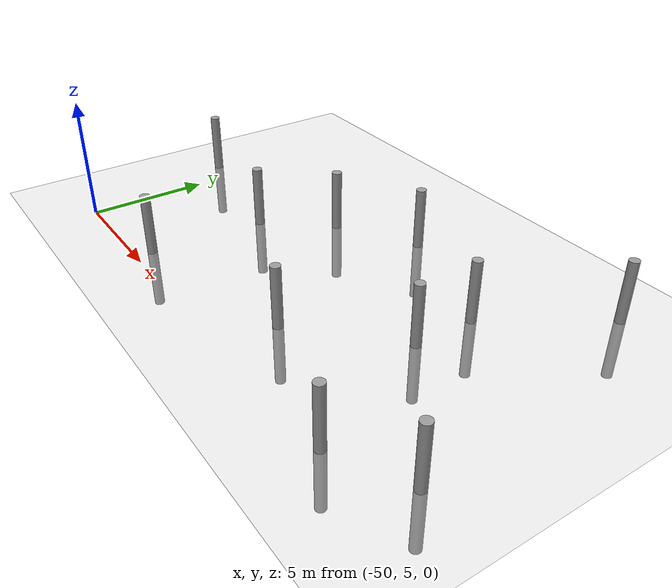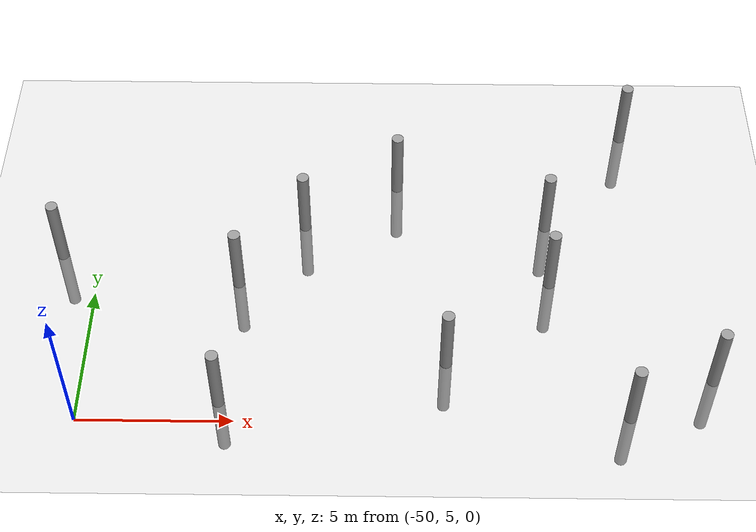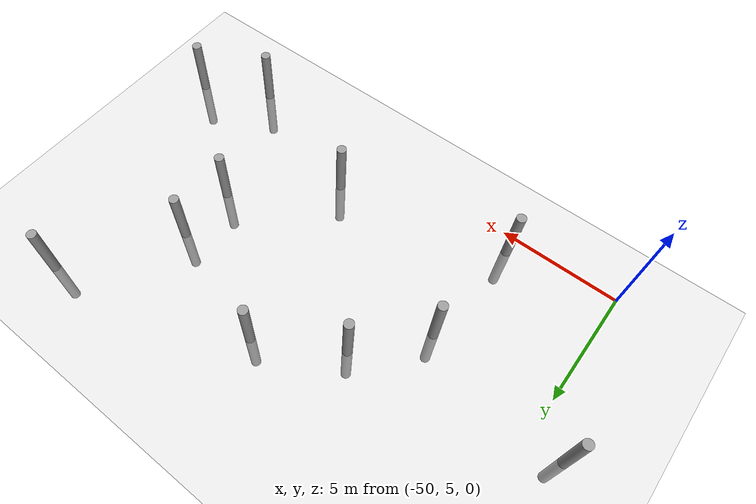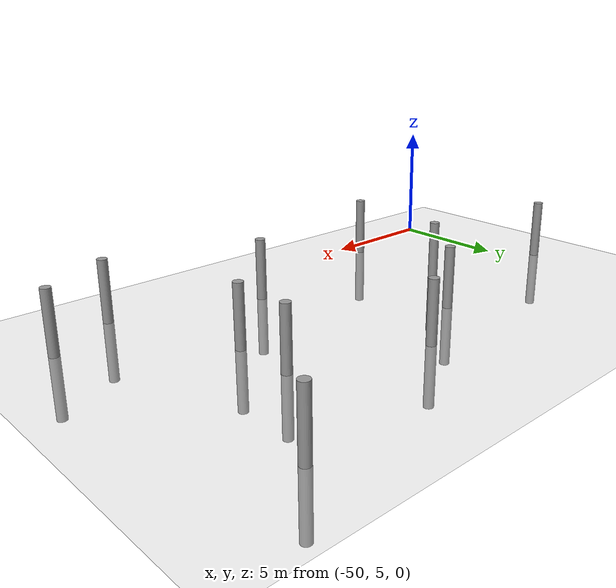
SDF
<sdf version="1.6">
 <world name="default">
  <model name="ground_plane">
   <static>1</static>
   <link name="link">
    <collision name="collision">
     <geometry><plane><normal>0 0 1</normal><size>100 100</size></plane></geometry>
     <surface><friction><ode><mu>100</mu><mu2>50</mu2></ode></friction></surface>
    </collision>
    <visual name="visual">
     <cast_shadows>0</cast_shadows>
     <geometry><plane><normal>0 0 1</normal><size>100 100</size></plane></geometry>
     <material>
      <script><uri>file://media/materials/scripts/gazebo.material</uri><name>Gazebo/Grey</name></script>
     </material>
    </visual>
   </link>
  </model>
  <model name="empty_pillars_5">
   <model name="empty_pillar_clone_12">
    <link name="link">
     <inertial>
      <mass>1</mass>
      <inertia><ixx>0.145833</ixx><ixy>0</ixy><ixz>0</ixz><iyy>0.145833</iyy><iyz>0</iyz><izz>0.125</izz></inertia>
     </inertial>
     <visual name="visual">
      <geometry><cylinder><radius>0.2</radius><length>5</length></cylinder></geometry>
      <material>
       <script><name>Gazebo/Grey</name><uri>file://media/materials/scripts/gazebo.material</uri></script>
       <shader type="vertex"><normal_map>__default__</normal_map></shader>
       <ambient>0.3 0.3 0.3 1</ambient>
       <diffuse>0.7 0.7 0.7 1</diffuse>
       <specular>0.01 0.01 0.01 1</specular>
       <emissive>0 0 0 1</emissive>
      </material>
     </visual>
     <collision name="collision">
      <geometry><cylinder><radius>0.05</radius><length>5</length></cylinder></geometry>
      <surface>
       <friction>
        <ode><mu>1</mu><mu2>1</mu2><fdir1>0 0 0</fdir1><slip1>0</slip1><slip2>0</slip2></ode>
        <torsional>
         <coefficient>1</coefficient>
         <patch_radius>0</patch_radius>
         <surface_radius>0</surface_radius>
         <use_patch_radius>1</use_patch_radius>
         <ode><slip>0</slip></ode>
        </torsional>
       </friction>
       <bounce><restitution_coefficient>0</restitution_coefficient><threshold>1e+06</threshold></bounce>
       <contact>
        <collide_without_contact>0</collide_without_contact>
        <collide_without_contact_bitmask>1</collide_without_contact_bitmask>
        <collide_bitmask>1</collide_bitmask>
        <ode>
         <soft_cfm>0</soft_cfm>
         <soft_erp>0.2</soft_erp>
         <kp>1e+13</kp>
         <kd>1</kd>
         <max_vel>0.01</max_vel>
         <min_depth>0</min_depth>
        </ode>
        <bullet>
         <split_impulse>1</split_impulse>
         <split_impulse_penetration_threshold>-0.01</split_impulse_penetration_threshold>
         <soft_cfm>0</soft_cfm>
         <soft_erp>0.2</soft_erp>
         <kp>1e+13</kp>
         <kd>1</kd>
        </bullet>
       </contact>
      </surface>
     </collision>
    </link>
    <static>0</static>
    <pose>-4.01464 -20.8403 0 0 -0 0</pose>
   </model>
   <model name="empty_pillar_clone_13">
    <link name="link">
     <inertial>
      <mass>1</mass>
      <inertia><ixx>0.145833</ixx><ixy>0</ixy><ixz>0</ixz><iyy>0.145833</iyy><iyz>0</iyz><izz>0.125</izz></inertia>
     </inertial>
     <visual name="visual">
      <geometry><cylinder><radius>0.2</radius><length>5</length></cylinder></geometry>
      <material>
       <script><name>Gazebo/Grey</name><uri>file://media/materials/scripts/gazebo.material</uri></script>
       <shader type="vertex"><normal_map>__default__</normal_map></shader>
       <ambient>0.3 0.3 0.3 1</ambient>
       <diffuse>0.7 0.7 0.7 1</diffuse>
       <specular>0.01 0.01 0.01 1</specular>
       <emissive>0 0 0 1</emissive>
      </material>
     </visual>
     <collision name="collision">
      <geometry><cylinder><radius>0.05</radius><length>5</length></cylinder></geometry>
      <surface>
       <friction>
        <ode><mu>1</mu><mu2>1</mu2><fdir1>0 0 0</fdir1><slip1>0</slip1><slip2>0</slip2></ode>
        <torsional>
         <coefficient>1</coefficient>
         <patch_radius>0</patch_radius>
         <surface_radius>0</surface_radius>
         <use_patch_radius>1</use_patch_radius>
         <ode><slip>0</slip></ode>
        </torsional>
       </friction>
       <bounce><restitution_coefficient>0</restitution_coefficient><threshold>1e+06</threshold></bounce>
       <contact>
        <collide_without_contact>0</collide_without_contact>
        <collide_without_contact_bitmask>1</collide_without_contact_bitmask>
        <collide_bitmask>1</collide_bitmask>
        <ode>
         <soft_cfm>0</soft_cfm>
         <soft_erp>0.2</soft_erp>
         <kp>1e+13</kp>
         <kd>1</kd>
         <max_vel>0.01</max_vel>
         <min_depth>0</min_depth>
        </ode>
        <bullet>
         <split_impulse>1</split_impulse>
         <split_impulse_penetration_threshold>-0.01</split_impulse_penetration_threshold>
         <soft_cfm>0</soft_cfm>
         <soft_erp>0.2</soft_erp>
         <kp>1e+13</kp>
         <kd>1</kd>
        </bullet>
       </contact>
      </surface>
     </collision>
    </link>
    <static>0</static>
    <pose>-9.01464 -14.4259 0 0 -0 0</pose>
   </model>
   <model name="empty_pillar_clone_35">
    <link name="link">
     <inertial>
      <mass>1</mass>
      <inertia><ixx>0.145833</ixx><ixy>0</ixy><ixz>0</ixz><iyy>0.145833</iyy><iyz>0</iyz><izz>0.125</izz></inertia>
     </inertial>
     <visual name="visual">
      <geometry><cylinder><radius>0.2</radius><length>5</length></cylinder></geometry>
      <material>
       <script><name>Gazebo/Grey</name><uri>file://media/materials/scripts/gazebo.material</uri></script>
       <shader type="vertex"><normal_map>__default__</normal_map></shader>
       <ambient>0.3 0.3 0.3 1</ambient>
       <diffuse>0.7 0.7 0.7 1</diffuse>
       <specular>0.01 0.01 0.01 1</specular>
       <emissive>0 0 0 1</emissive>
      </material>
     </visual>
     <collision name="collision">
      <geometry><cylinder><radius>0.05</radius><length>5</length></cylinder></geometry>
      <surface>
       <friction>
        <ode><mu>1</mu><mu2>1</mu2><fdir1>0 0 0</fdir1><slip1>0</slip1><slip2>0</slip2></ode>
        <torsional>
         <coefficient>1</coefficient>
         <patch_radius>0</patch_radius>
         <surface_radius>0</surface_radius>
         <use_patch_radius>1</use_patch_radius>
         <ode><slip>0</slip></ode>
        </torsional>
       </friction>
       <bounce><restitution_coefficient>0</restitution_coefficient><threshold>1e+06</threshold></bounce>
       <contact>
        <collide_without_contact>0</collide_without_contact>
        <collide_without_contact_bitmask>1</collide_without_contact_bitmask>
        <collide_bitmask>1</collide_bitmask>
        <ode>
         <soft_cfm>0</soft_cfm>
         <soft_erp>0.2</soft_erp>
         <kp>1e+13</kp>
         <kd>1</kd>
         <max_vel>0.01</max_vel>
         <min_depth>0</min_depth>
        </ode>
        <bullet>
         <split_impulse>1</split_impulse>
         <split_impulse_penetration_threshold>-0.01</split_impulse_penetration_threshold>
         <soft_cfm>0</soft_cfm>
         <soft_erp>0.2</soft_erp>
         <kp>1e+13</kp>
         <kd>1</kd>
        </bullet>
       </contact>
      </surface>
     </collision>
    </link>
    <static>0</static>
    <pose>-19.4431 -17.0281 0 0 -0 0</pose>
   </model>
   <model name="empty_pillar_clone_40">
    <link name="link">
     <inertial>
      <mass>1</mass>
      <inertia><ixx>0.145833</ixx><ixy>0</ixy><ixz>0</ixz><iyy>0.145833</iyy><iyz>0</iyz><izz>0.125</izz></inertia>
     </inertial>
     <visual name="visual">
      <geometry><cylinder><radius>0.2</radius><length>5</length></cylinder></geometry>
      <material>
       <script><name>Gazebo/Grey</name><uri>file://media/materials/scripts/gazebo.material</uri></script>
       <shader type="vertex"><normal_map>__default__</normal_map></shader>
       <ambient>0.3 0.3 0.3 1</ambient>
       <diffuse>0.7 0.7 0.7 1</diffuse>
       <specular>0.01 0.01 0.01 1</specular>
       <emissive>0 0 0 1</emissive>
      </material>
     </visual>
     <collision name="collision">
      <geometry><cylinder><radius>0.05</radius><length>5</length></cylinder></geometry>
      <surface>
       <friction>
        <ode><mu>1</mu><mu2>1</mu2><fdir1>0 0 0</fdir1><slip1>0</slip1><slip2>0</slip2></ode>
        <torsional>
         <coefficient>1</coefficient>
         <patch_radius>0</patch_radius>
         <surface_radius>0</surface_radius>
         <use_patch_radius>1</use_patch_radius>
         <ode><slip>0</slip></ode>
        </torsional>
       </friction>
       <bounce><restitution_coefficient>0</restitution_coefficient><threshold>1e+06</threshold></bounce>
       <contact>
        <collide_without_contact>0</collide_without_contact>
        <collide_without_contact_bitmask>1</collide_without_contact_bitmask>
        <collide_bitmask>1</collide_bitmask>
        <ode>
         <soft_cfm>0</soft_cfm>
         <soft_erp>0.2</soft_erp>
         <kp>1e+13</kp>
         <kd>1</kd>
         <max_vel>0.01</max_vel>
         <min_depth>0</min_depth>
        </ode>
        <bullet>
         <split_impulse>1</split_impulse>
         <split_impulse_penetration_threshold>-0.01</split_impulse_penetration_threshold>
         <soft_cfm>0</soft_cfm>
         <soft_erp>0.2</soft_erp>
         <kp>1e+13</kp>
         <kd>1</kd>
        </bullet>
       </contact>
      </surface>
     </collision>
    </link>
    <static>0</static>
    <pose>-17.318 -14.4851 0 0 -0 0</pose>
   </model>
   <model name="empty_pillar_clone_41">
    <link name="link">
     <inertial>
      <mass>1</mass>
      <inertia><ixx>0.145833</ixx><ixy>0</ixy><ixz>0</ixz><iyy>0.145833</iyy><iyz>0</iyz><izz>0.125</izz></inertia>
     </inertial>
     <visual name="visual">
      <geometry><cylinder><radius>0.2</radius><length>5</length></cylinder></geometry>
      <material>
       <script><name>Gazebo/Grey</name><uri>file://media/materials/scripts/gazebo.material</uri></script>
       <shader type="vertex"><normal_map>__default__</normal_map></shader>
       <ambient>0.3 0.3 0.3 1</ambient>
       <diffuse>0.7 0.7 0.7 1</diffuse>
       <specular>0.01 0.01 0.01 1</specular>
       <emissive>0 0 0 1</emissive>
      </material>
     </visual>
     <collision name="collision">
      <geometry><cylinder><radius>0.05</radius><length>5</length></cylinder></geometry>
      <surface>
       <friction>
        <ode><mu>1</mu><mu2>1</mu2><fdir1>0 0 0</fdir1><slip1>0</slip1><slip2>0</slip2></ode>
        <torsional>
         <coefficient>1</coefficient>
         <patch_radius>0</patch_radius>
         <surface_radius>0</surface_radius>
         <use_patch_radius>1</use_patch_radius>
         <ode><slip>0</slip></ode>
        </torsional>
       </friction>
       <bounce><restitution_coefficient>0</restitution_coefficient><threshold>1e+06</threshold></bounce>
       <contact>
        <collide_without_contact>0</collide_without_contact>
        <collide_without_contact_bitmask>1</collide_without_contact_bitmask>
        <collide_bitmask>1</collide_bitmask>
        <ode>
         <soft_cfm>0</soft_cfm>
         <soft_erp>0.2</soft_erp>
         <kp>1e+13</kp>
         <kd>1</kd>
         <max_vel>0.01</max_vel>
         <min_depth>0</min_depth>
        </ode>
        <bullet>
         <split_impulse>1</split_impulse>
         <split_impulse_penetration_threshold>-0.01</split_impulse_penetration_threshold>
         <soft_cfm>0</soft_cfm>
         <soft_erp>0.2</soft_erp>
         <kp>1e+13</kp>
         <kd>1</kd>
        </bullet>
       </contact>
      </surface>
     </collision>
    </link>
    <static>0</static>
    <pose>-14.1448 -12.6326 0 0 -0 0</pose>
   </model>
   <model name="empty_pillar_clone_42">
    <link name="link">
     <inertial>
      <mass>1</mass>
      <inertia><ixx>0.145833</ixx><ixy>0</ixy><ixz>0</ixz><iyy>0.145833</iyy><iyz>0</iyz><izz>0.125</izz></inertia>
     </inertial>
     <visual name="visual">
      <geometry><cylinder><radius>0.2</radius><length>5</length></cylinder></geometry>
      <material>
       <script><name>Gazebo/Grey</name><uri>file://media/materials/scripts/gazebo.material</uri></script>
       <shader type="vertex"><normal_map>__default__</normal_map></shader>
       <ambient>0.3 0.3 0.3 1</ambient>
       <diffuse>0.7 0.7 0.7 1</diffuse>
       <specular>0.01 0.01 0.01 1</specular>
       <emissive>0 0 0 1</emissive>
      </material>
     </visual>
     <collision name="collision">
      <geometry><cylinder><radius>0.05</radius><length>5</length></cylinder></geometry>
      <surface>
       <friction>
        <ode><mu>1</mu><mu2>1</mu2><fdir1>0 0 0</fdir1><slip1>0</slip1><slip2>0</slip2></ode>
        <torsional>
         <coefficient>1</coefficient>
         <patch_radius>0</patch_radius>
         <surface_radius>0</surface_radius>
         <use_patch_radius>1</use_patch_radius>
         <ode><slip>0</slip></ode>
        </torsional>
       </friction>
       <bounce><restitution_coefficient>0</restitution_coefficient><threshold>1e+06</threshold></bounce>
       <contact>
        <collide_without_contact>0</collide_without_contact>
        <collide_without_contact_bitmask>1</collide_without_contact_bitmask>
        <collide_bitmask>1</collide_bitmask>
        <ode>
         <soft_cfm>0</soft_cfm>
         <soft_erp>0.2</soft_erp>
         <kp>1e+13</kp>
         <kd>1</kd>
         <max_vel>0.01</max_vel>
         <min_depth>0</min_depth>
        </ode>
        <bullet>
         <split_impulse>1</split_impulse>
         <split_impulse_penetration_threshold>-0.01</split_impulse_penetration_threshold>
         <soft_cfm>0</soft_cfm>
         <soft_erp>0.2</soft_erp>
         <kp>1e+13</kp>
         <kd>1</kd>
        </bullet>
       </contact>
      </surface>
     </collision>
    </link>
    <static>0</static>
    <pose>-12.5409 -20.2416 0 0 -0 0</pose>
   </model>
   <model name="empty_pillar_clone_43">
    <link name="link">
     <inertial>
      <mass>1</mass>
      <inertia><ixx>0.145833</ixx><ixy>0</ixy><ixz>0</ixz><iyy>0.145833</iyy><iyz>0</iyz><izz>0.125</izz></inertia>
     </inertial>
     <visual name="visual">
      <geometry><cylinder><radius>0.2</radius><length>5</length></cylinder></geometry>
      <material>
       <script><name>Gazebo/Grey</name><uri>file://media/materials/scripts/gazebo.material</uri></script>
       <shader type="vertex"><normal_map>__default__</normal_map></shader>
       <ambient>0.3 0.3 0.3 1</ambient>
       <diffuse>0.7 0.7 0.7 1</diffuse>
       <specular>0.01 0.01 0.01 1</specular>
       <emissive>0 0 0 1</emissive>
      </material>
     </visual>
     <collision name="collision">
      <geometry><cylinder><radius>0.05</radius><length>5</length></cylinder></geometry>
      <surface>
       <friction>
        <ode><mu>1</mu><mu2>1</mu2><fdir1>0 0 0</fdir1><slip1>0</slip1><slip2>0</slip2></ode>
        <torsional>
         <coefficient>1</coefficient>
         <patch_radius>0</patch_radius>
         <surface_radius>0</surface_radius>
         <use_patch_radius>1</use_patch_radius>
         <ode><slip>0</slip></ode>
        </torsional>
       </friction>
       <bounce><restitution_coefficient>0</restitution_coefficient><threshold>1e+06</threshold></bounce>
       <contact>
        <collide_without_contact>0</collide_without_contact>
        <collide_without_contact_bitmask>1</collide_without_contact_bitmask>
        <collide_bitmask>1</collide_bitmask>
        <ode>
         <soft_cfm>0</soft_cfm>
         <soft_erp>0.2</soft_erp>
         <kp>1e+13</kp>
         <kd>1</kd>
         <max_vel>0.01</max_vel>
         <min_depth>0</min_depth>
        </ode>
        <bullet>
         <split_impulse>1</split_impulse>
         <split_impulse_penetration_threshold>-0.01</split_impulse_penetration_threshold>
         <soft_cfm>0</soft_cfm>
         <soft_erp>0.2</soft_erp>
         <kp>1e+13</kp>
         <kd>1</kd>
        </bullet>
       </contact>
      </surface>
     </collision>
    </link>
    <static>0</static>
    <pose>-19.7613 -21.8307 0 0 -0 0</pose>
   </model>
   <model name="empty_pillar_clone_44">
    <link name="link">
     <inertial>
      <mass>1</mass>
      <inertia><ixx>0.145833</ixx><ixy>0</ixy><ixz>0</ixz><iyy>0.145833</iyy><iyz>0</iyz><izz>0.125</izz></inertia>
     </inertial>
     <visual name="visual">
      <geometry><cylinder><radius>0.2</radius><length>5</length></cylinder></geometry>
      <material>
       <script><name>Gazebo/Grey</name><uri>file://media/materials/scripts/gazebo.material</uri></script>
       <shader type="vertex"><normal_map>__default__</normal_map></shader>
       <ambient>0.3 0.3 0.3 1</ambient>
       <diffuse>0.7 0.7 0.7 1</diffuse>
       <specular>0.01 0.01 0.01 1</specular>
       <emissive>0 0 0 1</emissive>
      </material>
     </visual>
     <collision name="collision">
      <geometry><cylinder><radius>0.05</radius><length>5</length></cylinder></geometry>
      <surface>
       <friction>
        <ode><mu>1</mu><mu2>1</mu2><fdir1>0 0 0</fdir1><slip1>0</slip1><slip2>0</slip2></ode>
        <torsional>
         <coefficient>1</coefficient>
         <patch_radius>0</patch_radius>
         <surface_radius>0</surface_radius>
         <use_patch_radius>1</use_patch_radius>
         <ode><slip>0</slip></ode>
        </torsional>
       </friction>
       <bounce><restitution_coefficient>0</restitution_coefficient><threshold>1e+06</threshold></bounce>
       <contact>
        <collide_without_contact>0</collide_without_contact>
        <collide_without_contact_bitmask>1</collide_without_contact_bitmask>
        <collide_bitmask>1</collide_bitmask>
        <ode>
         <soft_cfm>0</soft_cfm>
         <soft_erp>0.2</soft_erp>
         <kp>1e+13</kp>
         <kd>1</kd>
         <max_vel>0.01</max_vel>
         <min_depth>0</min_depth>
        </ode>
        <bullet>
         <split_impulse>1</split_impulse>
         <split_impulse_penetration_threshold>-0.01</split_impulse_penetration_threshold>
         <soft_cfm>0</soft_cfm>
         <soft_erp>0.2</soft_erp>
         <kp>1e+13</kp>
         <kd>1</kd>
        </bullet>
       </contact>
      </surface>
     </collision>
    </link>
    <static>0</static>
    <pose>-6.78285 -22.2729 0 0 -0 0</pose>
   </model>
   <model name="empty_pillar_clone_45">
    <link name="link">
     <inertial>
      <mass>1</mass>
      <inertia><ixx>0.145833</ixx><ixy>0</ixy><ixz>0</ixz><iyy>0.145833</iyy><iyz>0</iyz><izz>0.125</izz></inertia>
     </inertial>
     <visual name="visual">
      <geometry><cylinder><radius>0.2</radius><length>5</length></cylinder></geometry>
      <material>
       <script><name>Gazebo/Grey</name><uri>file://media/materials/scripts/gazebo.material</uri></script>
       <shader type="vertex"><normal_map>__default__</normal_map></shader>
       <ambient>0.3 0.3 0.3 1</ambient>
       <diffuse>0.7 0.7 0.7 1</diffuse>
       <specular>0.01 0.01 0.01 1</specular>
       <emissive>0 0 0 1</emissive>
      </material>
     </visual>
     <collision name="collision">
      <geometry><cylinder><radius>0.05</radius><length>5</length></cylinder></geometry>
      <surface>
       <friction>
        <ode><mu>1</mu><mu2>1</mu2><fdir1>0 0 0</fdir1><slip1>0</slip1><slip2>0</slip2></ode>
        <torsional>
         <coefficient>1</coefficient>
         <patch_radius>0</patch_radius>
         <surface_radius>0</surface_radius>
         <use_patch_radius>1</use_patch_radius>
         <ode><slip>0</slip></ode>
        </torsional>
       </friction>
       <bounce><restitution_coefficient>0</restitution_coefficient><threshold>1e+06</threshold></bounce>
       <contact>
        <collide_without_contact>0</collide_without_contact>
        <collide_without_contact_bitmask>1</collide_without_contact_bitmask>
        <collide_bitmask>1</collide_bitmask>
        <ode>
         <soft_cfm>0</soft_cfm>
         <soft_erp>0.2</soft_erp>
         <kp>1e+13</kp>
         <kd>1</kd>
         <max_vel>0.01</max_vel>
         <min_depth>0</min_depth>
        </ode>
        <bullet>
         <split_impulse>1</split_impulse>
         <split_impulse_penetration_threshold>-0.01</split_impulse_penetration_threshold>
         <soft_cfm>0</soft_cfm>
         <soft_erp>0.2</soft_erp>
         <kp>1e+13</kp>
         <kd>1</kd>
        </bullet>
       </contact>
      </surface>
     </collision>
    </link>
    <static>0</static>
    <pose>-9.01076 -16.9307 0 0 -0 0</pose>
   </model>
   <model name="empty_pillar_clone_5">
    <link name="link">
     <inertial>
      <mass>1</mass>
      <inertia><ixx>0.145833</ixx><ixy>0</ixy><ixz>0</ixz><iyy>0.145833</iyy><iyz>0</iyz><izz>0.125</izz></inertia>
     </inertial>
     <visual name="visual">
      <geometry><cylinder><radius>0.2</radius><length>5</length></cylinder></geometry>
      <material>
       <script><name>Gazebo/Grey</name><uri>file://media/materials/scripts/gazebo.material</uri></script>
       <shader type="vertex"><normal_map>__default__</normal_map></shader>
       <ambient>0.3 0.3 0.3 1</ambient>
       <diffuse>0.7 0.7 0.7 1</diffuse>
       <specular>0.01 0.01 0.01 1</specular>
       <emissive>0 0 0 1</emissive>
      </material>
     </visual>
     <collision name="collision">
      <geometry><cylinder><radius>0.05</radius><length>5</length></cylinder></geometry>
      <surface>
       <friction>
        <ode><mu>1</mu><mu2>1</mu2><fdir1>0 0 0</fdir1><slip1>0</slip1><slip2>0</slip2></ode>
        <torsional>
         <coefficient>1</coefficient>
         <patch_radius>0</patch_radius>
         <surface_radius>0</surface_radius>
         <use_patch_radius>1</use_patch_radius>
         <ode><slip>0</slip></ode>
        </torsional>
       </friction>
       <bounce><restitution_coefficient>0</restitution_coefficient><threshold>1e+06</threshold></bounce>
       <contact>
        <collide_without_contact>0</collide_without_contact>
        <collide_without_contact_bitmask>1</collide_without_contact_bitmask>
        <collide_bitmask>1</collide_bitmask>
        <ode>
         <soft_cfm>0</soft_cfm>
         <soft_erp>0.2</soft_erp>
         <kp>1e+13</kp>
         <kd>1</kd>
         <max_vel>0.01</max_vel>
         <min_depth>0</min_depth>
        </ode>
        <bullet>
         <split_impulse>1</split_impulse>
         <split_impulse_penetration_threshold>-0.01</split_impulse_penetration_threshold>
         <soft_cfm>0</soft_cfm>
         <soft_erp>0.2</soft_erp>
         <kp>1e+13</kp>
         <kd>1</kd>
        </bullet>
       </contact>
      </surface>
     </collision>
    </link>
    <static>0</static>
    <pose>-6.03595 -10.0932 0 0 -0 0</pose>
   </model>
   <static>0</static>
   <pose>-25.786 27.5577 0 0 -0 0</pose>
  </model>
  <model name="empty_pillars_6">
   <model name="empty_pillar_clone_54">
    <link name="link">
     <inertial>
      <mass>1</mass>
      <inertia><ixx>0.145833</ixx><ixy>0</ixy><ixz>0</ixz><iyy>0.145833</iyy><iyz>0</iyz><izz>0.125</izz></inertia>
     </inertial>
     <visual name="visual">
      <geometry><cylinder><radius>0.2</radius><length>5</length></cylinder></geometry>
      <material>
       <script><name>Gazebo/Grey</name><uri>file://media/materials/scripts/gazebo.material</uri></script>
       <shader type="vertex"><normal_map>__default__</normal_map></shader>
       <ambient>0.3 0.3 0.3 1</ambient>
       <diffuse>0.7 0.7 0.7 1</diffuse>
       <specular>0.01 0.01 0.01 1</specular>
       <emissive>0 0 0 1</emissive>
      </material>
     </visual>
     <collision name="collision">
      <geometry><cylinder><radius>0.05</radius><length>5</length></cylinder></geometry>
      <surface>
       <friction>
        <ode><mu>1</mu><mu2>1</mu2><fdir1>0 0 0</fdir1><slip1>0</slip1><slip2>0</slip2></ode>
        <torsional>
         <coefficient>1</coefficient>
         <patch_radius>0</patch_radius>
         <surface_radius>0</surface_radius>
         <use_patch_radius>1</use_patch_radius>
         <ode><slip>0</slip></ode>
        </torsional>
       </friction>
       <bounce><restitution_coefficient>0</restitution_coefficient><threshold>1e+06</threshold></bounce>
       <contact>
        <collide_without_contact>0</collide_without_contact>
        <collide_without_contact_bitmask>1</collide_without_contact_bitmask>
        <collide_bitmask>1</collide_bitmask>
        <ode>
         <soft_cfm>0</soft_cfm>
         <soft_erp>0.2</soft_erp>
         <kp>1e+13</kp>
         <kd>1</kd>
         <max_vel>0.01</max_vel>
         <min_depth>0</min_depth>
        </ode>
        <bullet>
         <split_impulse>1</split_impulse>
         <split_impulse_penetration_threshold>-0.01</split_impulse_penetration_threshold>
         <soft_cfm>0</soft_cfm>
         <soft_erp>0.2</soft_erp>
         <kp>1e+13</kp>
         <kd>1</kd>
        </bullet>
       </contact>
      </surface>
     </collision>
    </link>
    <static>0</static>
    <pose>24.557 -15.8784 0 0 -0 0</pose>
   </model>
   <static>0</static>
   <pose>-75.8833 27.5686 0 0 -0 0</pose>
  </model>
 </world>
</sdf>
